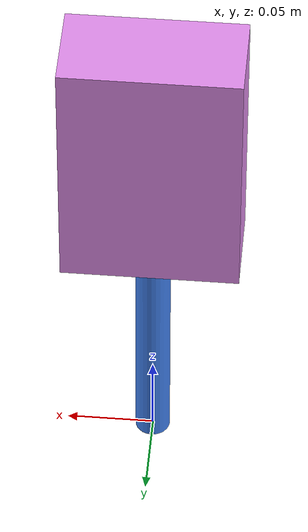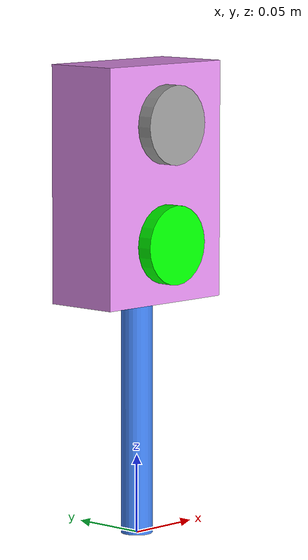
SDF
<?xml version="1.0" ?>
<!-- |    This document was autogenerated by xacro from traffic_light.xacro            | -->
<!-- |    EDITING THIS FILE BY HAND IS NOT RECOMMENDED                                 | -->
<sdf version="1.4" xmlns:xacro="http://www.ros.org/wiki/xacro">
  <model name="traffic_light">
    <static>true</static>
    <link name="traffic_light">
      <pose>0 0 0 0 0 0</pose>
      <visual name="base">
        <pose>0 0 0.075 0 0 0</pose>
        <geometry>
          <cylinder>
            <radius>0.01</radius>
            <length>0.15</length>
          </cylinder>
        </geometry>
        <material>
          <diffuse>0.25 0.50 0.93 1.00</diffuse>
        </material>
      </visual>
      <visual name="box">
        <pose>0 0 0.225 0 0 0</pose>
        <geometry>
          <box>
            <size>0.1 0.05 0.15</size>
          </box>
        </geometry>
        <material>
          <diffuse>0.89 0.56 0.93 1.00</diffuse>
        </material>
      </visual>
    </link>
    <link name="green">
      <visual name="green">
        <pose>0 -0.03 0.1875 1.57 0 0</pose>
        <geometry>
          <cylinder>
            <radius>0.025</radius>
            <length>0.01</length>
          </cylinder>
        </geometry>
        <material>
          <diffuse>0.00 1.00 0.00 1.00</diffuse>
          <emissive>0.00 1.00 0.00 1.00</emissive>
        </material>
        <plugin filename="liblight_plugin.so" name="green_plugin"/>
      </visual>
    </link>
    <link name="red">
      <visual name="red">
        <pose>0 -0.03 0.2625 1.57 0 0</pose>
        <geometry>
          <cylinder>
            <radius>0.025</radius>
            <length>0.01</length>
          </cylinder>
        </geometry>
        <material>
          <diffuse>0.60 0.60 0.60 1.00</diffuse>
          <emissive>0.00 0.00 0.00 0.00</emissive>
        </material>
        <plugin filename="liblight_plugin.so" name="red_plugin"/>
      </visual>
    </link>
  </model>
</sdf>
